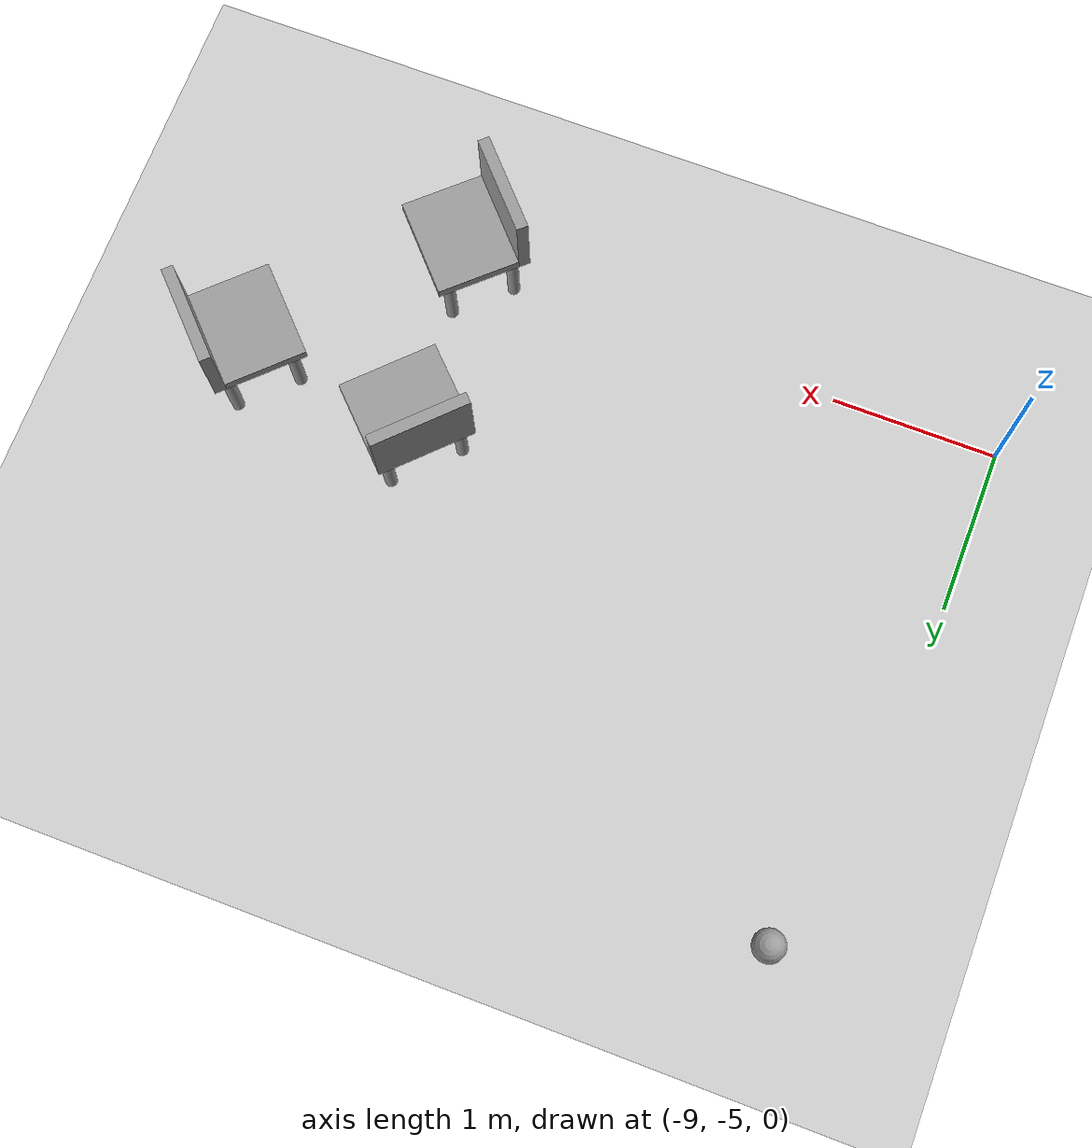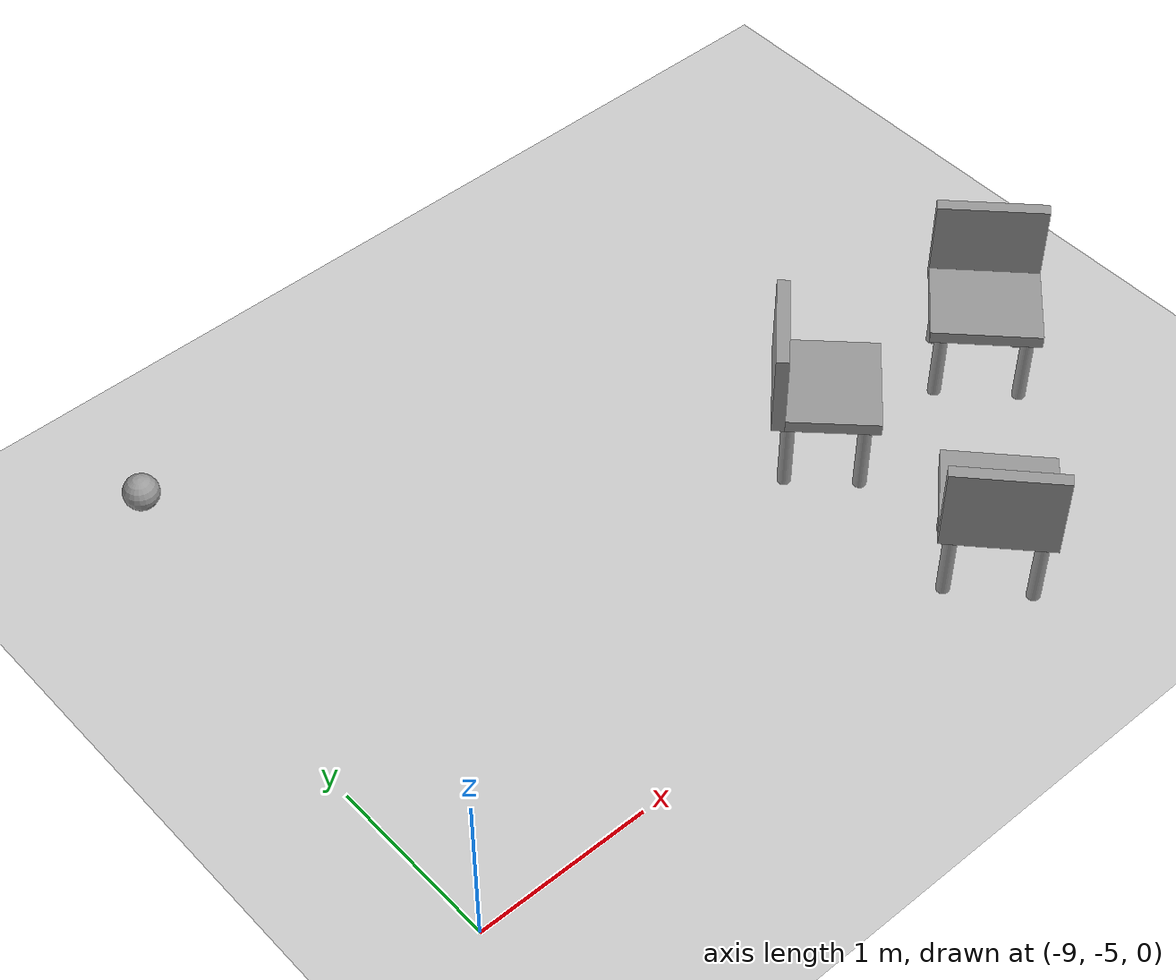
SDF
<sdf version="1.6">
 <world name="default">
  <model name="ground_plane">
   <static>1</static>
   <link name="link">
    <collision name="collision">
     <geometry><plane><normal>0 0 1</normal><size>100 100</size></plane></geometry>
     <surface>
      <contact><collide_bitmask>65535</collide_bitmask></contact>
      <friction><ode><mu>100</mu><mu2>50</mu2></ode></friction>
     </surface>
    </collision>
    <visual name="visual">
     <cast_shadows>0</cast_shadows>
     <geometry><plane><normal>0 0 1</normal><size>100 100</size></plane></geometry>
     <material>
      <script><uri>file://media/materials/scripts/gazebo.material</uri><name>Gazebo/Grey</name></script>
     </material>
    </visual>
   </link>
  </model>
  <model name="chair_0">
   <link name="link_0">
    <inertial>
     <mass>1</mass>
     <inertia>
      <ixx>0.166667</ixx>
      <ixy>0</ixy>
      <ixz>0</ixz>
      <iyy>0.166667</iyy>
      <iyz>0</iyz>
      <izz>0.166667</izz>
     </inertia>
    </inertial>
    <pose>-0.067504 0 0.137499 0 -0 0</pose>
    <visual name="visual">
     <geometry><box><size>0.5 0.6 0.07</size></box></geometry>
     <material>
      <lighting>1</lighting>
      <script><uri>file://media/materials/scripts/gazebo.material</uri><name>Gazebo/Grey</name></script>
      <shader type="pixel"><normal_map>__default__</normal_map></shader>
      <ambient>0.3 0.3 0.3 1</ambient>
      <diffuse>0.7 0.7 0.7 1</diffuse>
      <specular>0.01 0.01 0.01 1</specular>
      <emissive>0 0 0 1</emissive>
     </material>
    </visual>
    <collision name="collision">
     <geometry><box><size>0.5 0.6 0.07</size></box></geometry>
     <surface>
      <friction>
       <ode><mu>1</mu><mu2>1</mu2><fdir1>0 0 0</fdir1><slip1>0</slip1><slip2>0</slip2></ode>
       <torsional>
        <coefficient>1</coefficient>
        <patch_radius>0</patch_radius>
        <surface_radius>0</surface_radius>
        <use_patch_radius>1</use_patch_radius>
        <ode><slip>0</slip></ode>
       </torsional>
      </friction>
      <bounce><restitution_coefficient>0</restitution_coefficient><threshold>1e+06</threshold></bounce>
      <contact>
       <collide_without_contact>0</collide_without_contact>
       <collide_without_contact_bitmask>1</collide_without_contact_bitmask>
       <collide_bitmask>1</collide_bitmask>
       <ode>
        <soft_cfm>0</soft_cfm>
        <soft_erp>0.2</soft_erp>
        <kp>1e+13</kp>
        <kd>1</kd>
        <max_vel>0.01</max_vel>
        <min_depth>0</min_depth>
       </ode>
       <bullet>
        <split_impulse>1</split_impulse>
        <split_impulse_penetration_threshold>-0.01</split_impulse_penetration_threshold>
        <soft_cfm>0</soft_cfm>
        <soft_erp>0.2</soft_erp>
        <kp>1e+13</kp>
        <kd>1</kd>
       </bullet>
      </contact>
     </surface>
    </collision>
   </link>
   <link name="link_0_clone">
    <inertial>
     <mass>1</mass>
     <inertia>
      <ixx>0.166667</ixx>
      <ixy>0</ixy>
      <ixz>0</ixz>
      <iyy>0.166667</iyy>
      <iyz>0</iyz>
      <izz>0.166667</izz>
     </inertia>
    </inertial>
    <pose>0.21752 0 0.352503 0 1.5707 0</pose>
    <visual name="visual">
     <geometry><box><size>0.5 0.6 0.07</size></box></geometry>
     <material>
      <lighting>1</lighting>
      <script><uri>file://media/materials/scripts/gazebo.material</uri><name>Gazebo/Grey</name></script>
      <shader type="pixel"><normal_map>__default__</normal_map></shader>
      <ambient>0.3 0.3 0.3 1</ambient>
      <diffuse>0.7 0.7 0.7 1</diffuse>
      <specular>0.01 0.01 0.01 1</specular>
      <emissive>0 0 0 1</emissive>
     </material>
    </visual>
    <collision name="collision">
     <geometry><box><size>0.5 0.6 0.07</size></box></geometry>
     <surface>
      <friction>
       <ode><mu>1</mu><mu2>1</mu2><fdir1>0 0 0</fdir1><slip1>0</slip1><slip2>0</slip2></ode>
       <torsional>
        <coefficient>1</coefficient>
        <patch_radius>0</patch_radius>
        <surface_radius>0</surface_radius>
        <use_patch_radius>1</use_patch_radius>
        <ode><slip>0</slip></ode>
       </torsional>
      </friction>
      <bounce><restitution_coefficient>0</restitution_coefficient><threshold>1e+06</threshold></bounce>
      <contact>
       <collide_without_contact>0</collide_without_contact>
       <collide_without_contact_bitmask>1</collide_without_contact_bitmask>
       <collide_bitmask>1</collide_bitmask>
       <ode>
        <soft_cfm>0</soft_cfm>
        <soft_erp>0.2</soft_erp>
        <kp>1e+13</kp>
        <kd>1</kd>
        <max_vel>0.01</max_vel>
        <min_depth>0</min_depth>
       </ode>
       <bullet>
        <split_impulse>1</split_impulse>
        <split_impulse_penetration_threshold>-0.01</split_impulse_penetration_threshold>
        <soft_cfm>0</soft_cfm>
        <soft_erp>0.2</soft_erp>
        <kp>1e+13</kp>
        <kd>1</kd>
       </bullet>
      </contact>
     </surface>
    </collision>
   </link>
   <link name="link_1">
    <inertial>
     <mass>1</mass>
     <inertia><ixx>0.145833</ixx><ixy>0</ixy><ixz>0</ixz><iyy>0.145833</iyy><iyz>0</iyz><izz>0.125</izz></inertia>
    </inertial>
    <pose>-0.237504 -0.23 -0.122501 0 -0 0</pose>
    <visual name="visual">
     <geometry><cylinder><radius>0.037</radius><length>0.45</length></cylinder></geometry>
     <material>
      <lighting>1</lighting>
      <script><uri>file://media/materials/scripts/gazebo.material</uri><name>Gazebo/Grey</name></script>
      <shader type="pixel"><normal_map>__default__</normal_map></shader>
      <ambient>0.3 0.3 0.3 1</ambient>
      <diffuse>0.7 0.7 0.7 1</diffuse>
      <specular>0.01 0.01 0.01 1</specular>
      <emissive>0 0 0 1</emissive>
     </material>
    </visual>
    <collision name="collision">
     <geometry><cylinder><radius>0.037</radius><length>0.45</length></cylinder></geometry>
     <surface>
      <friction>
       <ode><mu>1</mu><mu2>1</mu2><fdir1>0 0 0</fdir1><slip1>0</slip1><slip2>0</slip2></ode>
       <torsional>
        <coefficient>1</coefficient>
        <patch_radius>0</patch_radius>
        <surface_radius>0</surface_radius>
        <use_patch_radius>1</use_patch_radius>
        <ode><slip>0</slip></ode>
       </torsional>
      </friction>
      <bounce><restitution_coefficient>0</restitution_coefficient><threshold>1e+06</threshold></bounce>
      <contact>
       <collide_without_contact>0</collide_without_contact>
       <collide_without_contact_bitmask>1</collide_without_contact_bitmask>
       <collide_bitmask>1</collide_bitmask>
       <ode>
        <soft_cfm>0</soft_cfm>
        <soft_erp>0.2</soft_erp>
        <kp>1e+13</kp>
        <kd>1</kd>
        <max_vel>0.01</max_vel>
        <min_depth>0</min_depth>
       </ode>
       <bullet>
        <split_impulse>1</split_impulse>
        <split_impulse_penetration_threshold>-0.01</split_impulse_penetration_threshold>
        <soft_cfm>0</soft_cfm>
        <soft_erp>0.2</soft_erp>
        <kp>1e+13</kp>
        <kd>1</kd>
       </bullet>
      </contact>
     </surface>
    </collision>
   </link>
   <link name="link_1_clone">
    <inertial>
     <mass>1</mass>
     <inertia><ixx>0.145833</ixx><ixy>0</ixy><ixz>0</ixz><iyy>0.145833</iyy><iyz>0</iyz><izz>0.125</izz></inertia>
    </inertial>
    <pose>-0.237504 0.23 -0.122501 0 -0 0</pose>
    <visual name="visual">
     <geometry><cylinder><radius>0.037</radius><length>0.45</length></cylinder></geometry>
     <material>
      <lighting>1</lighting>
      <script><uri>file://media/materials/scripts/gazebo.material</uri><name>Gazebo/Grey</name></script>
      <shader type="pixel"><normal_map>__default__</normal_map></shader>
      <ambient>0.3 0.3 0.3 1</ambient>
      <diffuse>0.7 0.7 0.7 1</diffuse>
      <specular>0.01 0.01 0.01 1</specular>
      <emissive>0 0 0 1</emissive>
     </material>
    </visual>
    <collision name="collision">
     <geometry><cylinder><radius>0.037</radius><length>0.45</length></cylinder></geometry>
     <surface>
      <friction>
       <ode><mu>1</mu><mu2>1</mu2><fdir1>0 0 0</fdir1><slip1>0</slip1><slip2>0</slip2></ode>
       <torsional>
        <coefficient>1</coefficient>
        <patch_radius>0</patch_radius>
        <surface_radius>0</surface_radius>
        <use_patch_radius>1</use_patch_radius>
        <ode><slip>0</slip></ode>
       </torsional>
      </friction>
      <bounce><restitution_coefficient>0</restitution_coefficient><threshold>1e+06</threshold></bounce>
      <contact>
       <collide_without_contact>0</collide_without_contact>
       <collide_without_contact_bitmask>1</collide_without_contact_bitmask>
       <collide_bitmask>1</collide_bitmask>
       <ode>
        <soft_cfm>0</soft_cfm>
        <soft_erp>0.2</soft_erp>
        <kp>1e+13</kp>
        <kd>1</kd>
        <max_vel>0.01</max_vel>
        <min_depth>0</min_depth>
       </ode>
       <bullet>
        <split_impulse>1</split_impulse>
        <split_impulse_penetration_threshold>-0.01</split_impulse_penetration_threshold>
        <soft_cfm>0</soft_cfm>
        <soft_erp>0.2</soft_erp>
        <kp>1e+13</kp>
        <kd>1</kd>
       </bullet>
      </contact>
     </surface>
    </collision>
   </link>
   <link name="link_1_clone_0">
    <inertial>
     <mass>1</mass>
     <inertia><ixx>0.145833</ixx><ixy>0</ixy><ixz>0</ixz><iyy>0.145833</iyy><iyz>0</iyz><izz>0.125</izz></inertia>
    </inertial>
    <pose>0.162496 0.23 -0.122501 0 -0 0</pose>
    <visual name="visual">
     <geometry><cylinder><radius>0.037</radius><length>0.45</length></cylinder></geometry>
     <material>
      <lighting>1</lighting>
      <script><uri>file://media/materials/scripts/gazebo.material</uri><name>Gazebo/Grey</name></script>
      <shader type="pixel"><normal_map>__default__</normal_map></shader>
      <ambient>0.3 0.3 0.3 1</ambient>
      <diffuse>0.7 0.7 0.7 1</diffuse>
      <specular>0.01 0.01 0.01 1</specular>
      <emissive>0 0 0 1</emissive>
     </material>
    </visual>
    <collision name="collision">
     <geometry><cylinder><radius>0.037</radius><length>0.45</length></cylinder></geometry>
     <surface>
      <friction>
       <ode><mu>1</mu><mu2>1</mu2><fdir1>0 0 0</fdir1><slip1>0</slip1><slip2>0</slip2></ode>
       <torsional>
        <coefficient>1</coefficient>
        <patch_radius>0</patch_radius>
        <surface_radius>0</surface_radius>
        <use_patch_radius>1</use_patch_radius>
        <ode><slip>0</slip></ode>
       </torsional>
      </friction>
      <bounce><restitution_coefficient>0</restitution_coefficient><threshold>1e+06</threshold></bounce>
      <contact>
       <collide_without_contact>0</collide_without_contact>
       <collide_without_contact_bitmask>1</collide_without_contact_bitmask>
       <collide_bitmask>1</collide_bitmask>
       <ode>
        <soft_cfm>0</soft_cfm>
        <soft_erp>0.2</soft_erp>
        <kp>1e+13</kp>
        <kd>1</kd>
        <max_vel>0.01</max_vel>
        <min_depth>0</min_depth>
       </ode>
       <bullet>
        <split_impulse>1</split_impulse>
        <split_impulse_penetration_threshold>-0.01</split_impulse_penetration_threshold>
        <soft_cfm>0</soft_cfm>
        <soft_erp>0.2</soft_erp>
        <kp>1e+13</kp>
        <kd>1</kd>
       </bullet>
      </contact>
     </surface>
    </collision>
   </link>
   <link name="link_1_clone_1">
    <inertial>
     <mass>1</mass>
     <inertia><ixx>0.145833</ixx><ixy>0</ixy><ixz>0</ixz><iyy>0.145833</iyy><iyz>0</iyz><izz>0.125</izz></inertia>
    </inertial>
    <pose>0.162496 -0.23 -0.122501 0 -0 0</pose>
    <visual name="visual">
     <geometry><cylinder><radius>0.037</radius><length>0.45</length></cylinder></geometry>
     <material>
      <lighting>1</lighting>
      <script><uri>file://media/materials/scripts/gazebo.material</uri><name>Gazebo/Grey</name></script>
      <shader type="pixel"><normal_map>__default__</normal_map></shader>
      <ambient>0.3 0.3 0.3 1</ambient>
      <diffuse>0.7 0.7 0.7 1</diffuse>
      <specular>0.01 0.01 0.01 1</specular>
      <emissive>0 0 0 1</emissive>
     </material>
    </visual>
    <collision name="collision">
     <geometry><cylinder><radius>0.037</radius><length>0.45</length></cylinder></geometry>
     <surface>
      <friction>
       <ode><mu>1</mu><mu2>1</mu2><fdir1>0 0 0</fdir1><slip1>0</slip1><slip2>0</slip2></ode>
       <torsional>
        <coefficient>1</coefficient>
        <patch_radius>0</patch_radius>
        <surface_radius>0</surface_radius>
        <use_patch_radius>1</use_patch_radius>
        <ode><slip>0</slip></ode>
       </torsional>
      </friction>
      <bounce><restitution_coefficient>0</restitution_coefficient><threshold>1e+06</threshold></bounce>
      <contact>
       <collide_without_contact>0</collide_without_contact>
       <collide_without_contact_bitmask>1</collide_without_contact_bitmask>
       <collide_bitmask>1</collide_bitmask>
       <ode>
        <soft_cfm>0</soft_cfm>
        <soft_erp>0.2</soft_erp>
        <kp>1e+13</kp>
        <kd>1</kd>
        <max_vel>0.01</max_vel>
        <min_depth>0</min_depth>
       </ode>
       <bullet>
        <split_impulse>1</split_impulse>
        <split_impulse_penetration_threshold>-0.01</split_impulse_penetration_threshold>
        <soft_cfm>0</soft_cfm>
        <soft_erp>0.2</soft_erp>
        <kp>1e+13</kp>
        <kd>1</kd>
       </bullet>
      </contact>
     </surface>
    </collision>
   </link>
   <joint name="link_0_JOINT_0" type="fixed">
    <parent>link_0</parent>
    <child>link_0_clone</child>
    <physics>
     <ode><limit><cfm>0</cfm><erp>0.2</erp></limit><suspension><cfm>0</cfm><erp>0.2</erp></suspension></ode>
    </physics>
   </joint>
   <joint name="link_0_JOINT_1" type="fixed">
    <parent>link_0</parent>
    <child>link_1</child>
    <physics>
     <ode><limit><cfm>0</cfm><erp>0.2</erp></limit><suspension><cfm>0</cfm><erp>0.2</erp></suspension></ode>
    </physics>
   </joint>
   <joint name="link_0_JOINT_2" type="fixed">
    <parent>link_0</parent>
    <child>link_1_clone_0</child>
    <physics>
     <ode><limit><cfm>0</cfm><erp>0.2</erp></limit><suspension><cfm>0</cfm><erp>0.2</erp></suspension></ode>
    </physics>
   </joint>
   <joint name="link_0_JOINT_3" type="fixed">
    <parent>link_0</parent>
    <child>link_1_clone</child>
    <physics>
     <ode><limit><cfm>0</cfm><erp>0.2</erp></limit><suspension><cfm>0</cfm><erp>0.2</erp></suspension></ode>
    </physics>
   </joint>
   <joint name="link_0_JOINT_4" type="fixed">
    <parent>link_0</parent>
    <child>link_1_clone_1</child>
    <physics>
     <ode><limit><cfm>0</cfm><erp>0.2</erp></limit><suspension><cfm>0</cfm><erp>0.2</erp></suspension></ode>
    </physics>
   </joint>
   <static>0</static>
   <pose>-5.75013 -3.88388 0.347501 0 -0 2.36063</pose>
  </model>
  <model name="chair_1">
   <link name="link_0">
    <inertial>
     <mass>1</mass>
     <inertia>
      <ixx>0.166667</ixx>
      <ixy>0</ixy>
      <ixz>0</ixz>
      <iyy>0.166667</iyy>
      <iyz>0</iyz>
      <izz>0.166667</izz>
     </inertia>
    </inertial>
    <pose>-0.067504 0 0.137499 0 -0 0</pose>
    <visual name="visual">
     <geometry><box><size>0.5 0.6 0.07</size></box></geometry>
     <material>
      <lighting>1</lighting>
      <script><uri>file://media/materials/scripts/gazebo.material</uri><name>Gazebo/Grey</name></script>
      <shader type="pixel"><normal_map>__default__</normal_map></shader>
      <ambient>0.3 0.3 0.3 1</ambient>
      <diffuse>0.7 0.7 0.7 1</diffuse>
      <specular>0.01 0.01 0.01 1</specular>
      <emissive>0 0 0 1</emissive>
     </material>
    </visual>
    <collision name="collision">
     <geometry><box><size>0.5 0.6 0.07</size></box></geometry>
     <surface>
      <friction>
       <ode><mu>1</mu><mu2>1</mu2><fdir1>0 0 0</fdir1><slip1>0</slip1><slip2>0</slip2></ode>
       <torsional>
        <coefficient>1</coefficient>
        <patch_radius>0</patch_radius>
        <surface_radius>0</surface_radius>
        <use_patch_radius>1</use_patch_radius>
        <ode><slip>0</slip></ode>
       </torsional>
      </friction>
      <bounce><restitution_coefficient>0</restitution_coefficient><threshold>1e+06</threshold></bounce>
      <contact>
       <collide_without_contact>0</collide_without_contact>
       <collide_without_contact_bitmask>1</collide_without_contact_bitmask>
       <collide_bitmask>1</collide_bitmask>
       <ode>
        <soft_cfm>0</soft_cfm>
        <soft_erp>0.2</soft_erp>
        <kp>1e+13</kp>
        <kd>1</kd>
        <max_vel>0.01</max_vel>
        <min_depth>0</min_depth>
       </ode>
       <bullet>
        <split_impulse>1</split_impulse>
        <split_impulse_penetration_threshold>-0.01</split_impulse_penetration_threshold>
        <soft_cfm>0</soft_cfm>
        <soft_erp>0.2</soft_erp>
        <kp>1e+13</kp>
        <kd>1</kd>
       </bullet>
      </contact>
     </surface>
    </collision>
   </link>
   <link name="link_0_clone">
    <inertial>
     <mass>1</mass>
     <inertia>
      <ixx>0.166667</ixx>
      <ixy>0</ixy>
      <ixz>0</ixz>
      <iyy>0.166667</iyy>
      <iyz>0</iyz>
      <izz>0.166667</izz>
     </inertia>
    </inertial>
    <pose>0.21752 0 0.352503 0 1.5707 0</pose>
    <visual name="visual">
     <geometry><box><size>0.5 0.6 0.07</size></box></geometry>
     <material>
      <lighting>1</lighting>
      <script><uri>file://media/materials/scripts/gazebo.material</uri><name>Gazebo/Grey</name></script>
      <shader type="pixel"><normal_map>__default__</normal_map></shader>
      <ambient>0.3 0.3 0.3 1</ambient>
      <diffuse>0.7 0.7 0.7 1</diffuse>
      <specular>0.01 0.01 0.01 1</specular>
      <emissive>0 0 0 1</emissive>
     </material>
    </visual>
    <collision name="collision">
     <geometry><box><size>0.5 0.6 0.07</size></box></geometry>
     <surface>
      <friction>
       <ode><mu>1</mu><mu2>1</mu2><fdir1>0 0 0</fdir1><slip1>0</slip1><slip2>0</slip2></ode>
       <torsional>
        <coefficient>1</coefficient>
        <patch_radius>0</patch_radius>
        <surface_radius>0</surface_radius>
        <use_patch_radius>1</use_patch_radius>
        <ode><slip>0</slip></ode>
       </torsional>
      </friction>
      <bounce><restitution_coefficient>0</restitution_coefficient><threshold>1e+06</threshold></bounce>
      <contact>
       <collide_without_contact>0</collide_without_contact>
       <collide_without_contact_bitmask>1</collide_without_contact_bitmask>
       <collide_bitmask>1</collide_bitmask>
       <ode>
        <soft_cfm>0</soft_cfm>
        <soft_erp>0.2</soft_erp>
        <kp>1e+13</kp>
        <kd>1</kd>
        <max_vel>0.01</max_vel>
        <min_depth>0</min_depth>
       </ode>
       <bullet>
        <split_impulse>1</split_impulse>
        <split_impulse_penetration_threshold>-0.01</split_impulse_penetration_threshold>
        <soft_cfm>0</soft_cfm>
        <soft_erp>0.2</soft_erp>
        <kp>1e+13</kp>
        <kd>1</kd>
       </bullet>
      </contact>
     </surface>
    </collision>
   </link>
   <link name="link_1">
    <inertial>
     <mass>1</mass>
     <inertia><ixx>0.145833</ixx><ixy>0</ixy><ixz>0</ixz><iyy>0.145833</iyy><iyz>0</iyz><izz>0.125</izz></inertia>
    </inertial>
    <pose>-0.237504 -0.23 -0.122501 0 -0 0</pose>
    <visual name="visual">
     <geometry><cylinder><radius>0.037</radius><length>0.45</length></cylinder></geometry>
     <material>
      <lighting>1</lighting>
      <script><uri>file://media/materials/scripts/gazebo.material</uri><name>Gazebo/Grey</name></script>
      <shader type="pixel"><normal_map>__default__</normal_map></shader>
      <ambient>0.3 0.3 0.3 1</ambient>
      <diffuse>0.7 0.7 0.7 1</diffuse>
      <specular>0.01 0.01 0.01 1</specular>
      <emissive>0 0 0 1</emissive>
     </material>
    </visual>
    <collision name="collision">
     <geometry><cylinder><radius>0.037</radius><length>0.45</length></cylinder></geometry>
     <surface>
      <friction>
       <ode><mu>1</mu><mu2>1</mu2><fdir1>0 0 0</fdir1><slip1>0</slip1><slip2>0</slip2></ode>
       <torsional>
        <coefficient>1</coefficient>
        <patch_radius>0</patch_radius>
        <surface_radius>0</surface_radius>
        <use_patch_radius>1</use_patch_radius>
        <ode><slip>0</slip></ode>
       </torsional>
      </friction>
      <bounce><restitution_coefficient>0</restitution_coefficient><threshold>1e+06</threshold></bounce>
      <contact>
       <collide_without_contact>0</collide_without_contact>
       <collide_without_contact_bitmask>1</collide_without_contact_bitmask>
       <collide_bitmask>1</collide_bitmask>
       <ode>
        <soft_cfm>0</soft_cfm>
        <soft_erp>0.2</soft_erp>
        <kp>1e+13</kp>
        <kd>1</kd>
        <max_vel>0.01</max_vel>
        <min_depth>0</min_depth>
       </ode>
       <bullet>
        <split_impulse>1</split_impulse>
        <split_impulse_penetration_threshold>-0.01</split_impulse_penetration_threshold>
        <soft_cfm>0</soft_cfm>
        <soft_erp>0.2</soft_erp>
        <kp>1e+13</kp>
        <kd>1</kd>
       </bullet>
      </contact>
     </surface>
    </collision>
   </link>
   <link name="link_1_clone">
    <inertial>
     <mass>1</mass>
     <inertia><ixx>0.145833</ixx><ixy>0</ixy><ixz>0</ixz><iyy>0.145833</iyy><iyz>0</iyz><izz>0.125</izz></inertia>
    </inertial>
    <pose>-0.237504 0.23 -0.122501 0 -0 0</pose>
    <visual name="visual">
     <geometry><cylinder><radius>0.037</radius><length>0.45</length></cylinder></geometry>
     <material>
      <lighting>1</lighting>
      <script><uri>file://media/materials/scripts/gazebo.material</uri><name>Gazebo/Grey</name></script>
      <shader type="pixel"><normal_map>__default__</normal_map></shader>
      <ambient>0.3 0.3 0.3 1</ambient>
      <diffuse>0.7 0.7 0.7 1</diffuse>
      <specular>0.01 0.01 0.01 1</specular>
      <emissive>0 0 0 1</emissive>
     </material>
    </visual>
    <collision name="collision">
     <geometry><cylinder><radius>0.037</radius><length>0.45</length></cylinder></geometry>
     <surface>
      <friction>
       <ode><mu>1</mu><mu2>1</mu2><fdir1>0 0 0</fdir1><slip1>0</slip1><slip2>0</slip2></ode>
       <torsional>
        <coefficient>1</coefficient>
        <patch_radius>0</patch_radius>
        <surface_radius>0</surface_radius>
        <use_patch_radius>1</use_patch_radius>
        <ode><slip>0</slip></ode>
       </torsional>
      </friction>
      <bounce><restitution_coefficient>0</restitution_coefficient><threshold>1e+06</threshold></bounce>
      <contact>
       <collide_without_contact>0</collide_without_contact>
       <collide_without_contact_bitmask>1</collide_without_contact_bitmask>
       <collide_bitmask>1</collide_bitmask>
       <ode>
        <soft_cfm>0</soft_cfm>
        <soft_erp>0.2</soft_erp>
        <kp>1e+13</kp>
        <kd>1</kd>
        <max_vel>0.01</max_vel>
        <min_depth>0</min_depth>
       </ode>
       <bullet>
        <split_impulse>1</split_impulse>
        <split_impulse_penetration_threshold>-0.01</split_impulse_penetration_threshold>
        <soft_cfm>0</soft_cfm>
        <soft_erp>0.2</soft_erp>
        <kp>1e+13</kp>
        <kd>1</kd>
       </bullet>
      </contact>
     </surface>
    </collision>
   </link>
   <link name="link_1_clone_0">
    <inertial>
     <mass>1</mass>
     <inertia><ixx>0.145833</ixx><ixy>0</ixy><ixz>0</ixz><iyy>0.145833</iyy><iyz>0</iyz><izz>0.125</izz></inertia>
    </inertial>
    <pose>0.162496 0.23 -0.122501 0 -0 0</pose>
    <visual name="visual">
     <geometry><cylinder><radius>0.037</radius><length>0.45</length></cylinder></geometry>
     <material>
      <lighting>1</lighting>
      <script><uri>file://media/materials/scripts/gazebo.material</uri><name>Gazebo/Grey</name></script>
      <shader type="pixel"><normal_map>__default__</normal_map></shader>
      <ambient>0.3 0.3 0.3 1</ambient>
      <diffuse>0.7 0.7 0.7 1</diffuse>
      <specular>0.01 0.01 0.01 1</specular>
      <emissive>0 0 0 1</emissive>
     </material>
    </visual>
    <collision name="collision">
     <geometry><cylinder><radius>0.037</radius><length>0.45</length></cylinder></geometry>
     <surface>
      <friction>
       <ode><mu>1</mu><mu2>1</mu2><fdir1>0 0 0</fdir1><slip1>0</slip1><slip2>0</slip2></ode>
       <torsional>
        <coefficient>1</coefficient>
        <patch_radius>0</patch_radius>
        <surface_radius>0</surface_radius>
        <use_patch_radius>1</use_patch_radius>
        <ode><slip>0</slip></ode>
       </torsional>
      </friction>
      <bounce><restitution_coefficient>0</restitution_coefficient><threshold>1e+06</threshold></bounce>
      <contact>
       <collide_without_contact>0</collide_without_contact>
       <collide_without_contact_bitmask>1</collide_without_contact_bitmask>
       <collide_bitmask>1</collide_bitmask>
       <ode>
        <soft_cfm>0</soft_cfm>
        <soft_erp>0.2</soft_erp>
        <kp>1e+13</kp>
        <kd>1</kd>
        <max_vel>0.01</max_vel>
        <min_depth>0</min_depth>
       </ode>
       <bullet>
        <split_impulse>1</split_impulse>
        <split_impulse_penetration_threshold>-0.01</split_impulse_penetration_threshold>
        <soft_cfm>0</soft_cfm>
        <soft_erp>0.2</soft_erp>
        <kp>1e+13</kp>
        <kd>1</kd>
       </bullet>
      </contact>
     </surface>
    </collision>
   </link>
   <link name="link_1_clone_1">
    <inertial>
     <mass>1</mass>
     <inertia><ixx>0.145833</ixx><ixy>0</ixy><ixz>0</ixz><iyy>0.145833</iyy><iyz>0</iyz><izz>0.125</izz></inertia>
    </inertial>
    <pose>0.162496 -0.23 -0.122501 0 -0 0</pose>
    <visual name="visual">
     <geometry><cylinder><radius>0.037</radius><length>0.45</length></cylinder></geometry>
     <material>
      <lighting>1</lighting>
      <script><uri>file://media/materials/scripts/gazebo.material</uri><name>Gazebo/Grey</name></script>
      <shader type="pixel"><normal_map>__default__</normal_map></shader>
      <ambient>0.3 0.3 0.3 1</ambient>
      <diffuse>0.7 0.7 0.7 1</diffuse>
      <specular>0.01 0.01 0.01 1</specular>
      <emissive>0 0 0 1</emissive>
     </material>
    </visual>
    <collision name="collision">
     <geometry><cylinder><radius>0.037</radius><length>0.45</length></cylinder></geometry>
     <surface>
      <friction>
       <ode><mu>1</mu><mu2>1</mu2><fdir1>0 0 0</fdir1><slip1>0</slip1><slip2>0</slip2></ode>
       <torsional>
        <coefficient>1</coefficient>
        <patch_radius>0</patch_radius>
        <surface_radius>0</surface_radius>
        <use_patch_radius>1</use_patch_radius>
        <ode><slip>0</slip></ode>
       </torsional>
      </friction>
      <bounce><restitution_coefficient>0</restitution_coefficient><threshold>1e+06</threshold></bounce>
      <contact>
       <collide_without_contact>0</collide_without_contact>
       <collide_without_contact_bitmask>1</collide_without_contact_bitmask>
       <collide_bitmask>1</collide_bitmask>
       <ode>
        <soft_cfm>0</soft_cfm>
        <soft_erp>0.2</soft_erp>
        <kp>1e+13</kp>
        <kd>1</kd>
        <max_vel>0.01</max_vel>
        <min_depth>0</min_depth>
       </ode>
       <bullet>
        <split_impulse>1</split_impulse>
        <split_impulse_penetration_threshold>-0.01</split_impulse_penetration_threshold>
        <soft_cfm>0</soft_cfm>
        <soft_erp>0.2</soft_erp>
        <kp>1e+13</kp>
        <kd>1</kd>
       </bullet>
      </contact>
     </surface>
    </collision>
   </link>
   <joint name="link_0_JOINT_0" type="fixed">
    <parent>link_0</parent>
    <child>link_0_clone</child>
    <physics>
     <ode><limit><cfm>0</cfm><erp>0.2</erp></limit><suspension><cfm>0</cfm><erp>0.2</erp></suspension></ode>
    </physics>
   </joint>
   <joint name="link_0_JOINT_1" type="fixed">
    <parent>link_0</parent>
    <child>link_1</child>
    <physics>
     <ode><limit><cfm>0</cfm><erp>0.2</erp></limit><suspension><cfm>0</cfm><erp>0.2</erp></suspension></ode>
    </physics>
   </joint>
   <joint name="link_0_JOINT_2" type="fixed">
    <parent>link_0</parent>
    <child>link_1_clone_0</child>
    <physics>
     <ode><limit><cfm>0</cfm><erp>0.2</erp></limit><suspension><cfm>0</cfm><erp>0.2</erp></suspension></ode>
    </physics>
   </joint>
   <joint name="link_0_JOINT_3" type="fixed">
    <parent>link_0</parent>
    <child>link_1_clone</child>
    <physics>
     <ode><limit><cfm>0</cfm><erp>0.2</erp></limit><suspension><cfm>0</cfm><erp>0.2</erp></suspension></ode>
    </physics>
   </joint>
   <joint name="link_0_JOINT_4" type="fixed">
    <parent>link_0</parent>
    <child>link_1_clone_1</child>
    <physics>
     <ode><limit><cfm>0</cfm><erp>0.2</erp></limit><suspension><cfm>0</cfm><erp>0.2</erp></suspension></ode>
    </physics>
   </joint>
   <static>0</static>
   <pose>-4.62364 -4.00925 0.347501 0 -0 0.77284</pose>
  </model>
  <model name="chair_2">
   <link name="link_0">
    <inertial>
     <mass>1</mass>
     <inertia>
      <ixx>0.166667</ixx>
      <ixy>0</ixy>
      <ixz>0</ixz>
      <iyy>0.166667</iyy>
      <iyz>0</iyz>
      <izz>0.166667</izz>
     </inertia>
    </inertial>
    <pose>-0.067504 0 0.137499 0 -0 0</pose>
    <visual name="visual">
     <geometry><box><size>0.5 0.6 0.07</size></box></geometry>
     <material>
      <lighting>1</lighting>
      <script><uri>file://media/materials/scripts/gazebo.material</uri><name>Gazebo/Grey</name></script>
      <shader type="pixel"><normal_map>__default__</normal_map></shader>
      <ambient>0.3 0.3 0.3 1</ambient>
      <diffuse>0.7 0.7 0.7 1</diffuse>
      <specular>0.01 0.01 0.01 1</specular>
      <emissive>0 0 0 1</emissive>
     </material>
    </visual>
    <collision name="collision">
     <geometry><box><size>0.5 0.6 0.07</size></box></geometry>
     <surface>
      <friction>
       <ode><mu>1</mu><mu2>1</mu2><fdir1>0 0 0</fdir1><slip1>0</slip1><slip2>0</slip2></ode>
       <torsional>
        <coefficient>1</coefficient>
        <patch_radius>0</patch_radius>
        <surface_radius>0</surface_radius>
        <use_patch_radius>1</use_patch_radius>
        <ode><slip>0</slip></ode>
       </torsional>
      </friction>
      <bounce><restitution_coefficient>0</restitution_coefficient><threshold>1e+06</threshold></bounce>
      <contact>
       <collide_without_contact>0</collide_without_contact>
       <collide_without_contact_bitmask>1</collide_without_contact_bitmask>
       <collide_bitmask>1</collide_bitmask>
       <ode>
        <soft_cfm>0</soft_cfm>
        <soft_erp>0.2</soft_erp>
        <kp>1e+13</kp>
        <kd>1</kd>
        <max_vel>0.01</max_vel>
        <min_depth>0</min_depth>
       </ode>
       <bullet>
        <split_impulse>1</split_impulse>
        <split_impulse_penetration_threshold>-0.01</split_impulse_penetration_threshold>
        <soft_cfm>0</soft_cfm>
        <soft_erp>0.2</soft_erp>
        <kp>1e+13</kp>
        <kd>1</kd>
       </bullet>
      </contact>
     </surface>
    </collision>
   </link>
   <link name="link_0_clone">
    <inertial>
     <mass>1</mass>
     <inertia>
      <ixx>0.166667</ixx>
      <ixy>0</ixy>
      <ixz>0</ixz>
      <iyy>0.166667</iyy>
      <iyz>0</iyz>
      <izz>0.166667</izz>
     </inertia>
    </inertial>
    <pose>0.21752 0 0.352503 0 1.5707 0</pose>
    <visual name="visual">
     <geometry><box><size>0.5 0.6 0.07</size></box></geometry>
     <material>
      <lighting>1</lighting>
      <script><uri>file://media/materials/scripts/gazebo.material</uri><name>Gazebo/Grey</name></script>
      <shader type="pixel"><normal_map>__default__</normal_map></shader>
      <ambient>0.3 0.3 0.3 1</ambient>
      <diffuse>0.7 0.7 0.7 1</diffuse>
      <specular>0.01 0.01 0.01 1</specular>
      <emissive>0 0 0 1</emissive>
     </material>
    </visual>
    <collision name="collision">
     <geometry><box><size>0.5 0.6 0.07</size></box></geometry>
     <surface>
      <friction>
       <ode><mu>1</mu><mu2>1</mu2><fdir1>0 0 0</fdir1><slip1>0</slip1><slip2>0</slip2></ode>
       <torsional>
        <coefficient>1</coefficient>
        <patch_radius>0</patch_radius>
        <surface_radius>0</surface_radius>
        <use_patch_radius>1</use_patch_radius>
        <ode><slip>0</slip></ode>
       </torsional>
      </friction>
      <bounce><restitution_coefficient>0</restitution_coefficient><threshold>1e+06</threshold></bounce>
      <contact>
       <collide_without_contact>0</collide_without_contact>
       <collide_without_contact_bitmask>1</collide_without_contact_bitmask>
       <collide_bitmask>1</collide_bitmask>
       <ode>
        <soft_cfm>0</soft_cfm>
        <soft_erp>0.2</soft_erp>
        <kp>1e+13</kp>
        <kd>1</kd>
        <max_vel>0.01</max_vel>
        <min_depth>0</min_depth>
       </ode>
       <bullet>
        <split_impulse>1</split_impulse>
        <split_impulse_penetration_threshold>-0.01</split_impulse_penetration_threshold>
        <soft_cfm>0</soft_cfm>
        <soft_erp>0.2</soft_erp>
        <kp>1e+13</kp>
        <kd>1</kd>
       </bullet>
      </contact>
     </surface>
    </collision>
   </link>
   <link name="link_1">
    <inertial>
     <mass>1</mass>
     <inertia><ixx>0.145833</ixx><ixy>0</ixy><ixz>0</ixz><iyy>0.145833</iyy><iyz>0</iyz><izz>0.125</izz></inertia>
    </inertial>
    <pose>-0.237504 -0.23 -0.122501 0 -0 0</pose>
    <visual name="visual">
     <geometry><cylinder><radius>0.037</radius><length>0.45</length></cylinder></geometry>
     <material>
      <lighting>1</lighting>
      <script><uri>file://media/materials/scripts/gazebo.material</uri><name>Gazebo/Grey</name></script>
      <shader type="pixel"><normal_map>__default__</normal_map></shader>
      <ambient>0.3 0.3 0.3 1</ambient>
      <diffuse>0.7 0.7 0.7 1</diffuse>
      <specular>0.01 0.01 0.01 1</specular>
      <emissive>0 0 0 1</emissive>
     </material>
    </visual>
    <collision name="collision">
     <geometry><cylinder><radius>0.037</radius><length>0.45</length></cylinder></geometry>
     <surface>
      <friction>
       <ode><mu>1</mu><mu2>1</mu2><fdir1>0 0 0</fdir1><slip1>0</slip1><slip2>0</slip2></ode>
       <torsional>
        <coefficient>1</coefficient>
        <patch_radius>0</patch_radius>
        <surface_radius>0</surface_radius>
        <use_patch_radius>1</use_patch_radius>
        <ode><slip>0</slip></ode>
       </torsional>
      </friction>
      <bounce><restitution_coefficient>0</restitution_coefficient><threshold>1e+06</threshold></bounce>
      <contact>
       <collide_without_contact>0</collide_without_contact>
       <collide_without_contact_bitmask>1</collide_without_contact_bitmask>
       <collide_bitmask>1</collide_bitmask>
       <ode>
        <soft_cfm>0</soft_cfm>
        <soft_erp>0.2</soft_erp>
        <kp>1e+13</kp>
        <kd>1</kd>
        <max_vel>0.01</max_vel>
        <min_depth>0</min_depth>
       </ode>
       <bullet>
        <split_impulse>1</split_impulse>
        <split_impulse_penetration_threshold>-0.01</split_impulse_penetration_threshold>
        <soft_cfm>0</soft_cfm>
        <soft_erp>0.2</soft_erp>
        <kp>1e+13</kp>
        <kd>1</kd>
       </bullet>
      </contact>
     </surface>
    </collision>
   </link>
   <link name="link_1_clone">
    <inertial>
     <mass>1</mass>
     <inertia><ixx>0.145833</ixx><ixy>0</ixy><ixz>0</ixz><iyy>0.145833</iyy><iyz>0</iyz><izz>0.125</izz></inertia>
    </inertial>
    <pose>-0.237504 0.23 -0.122501 0 -0 0</pose>
    <visual name="visual">
     <geometry><cylinder><radius>0.037</radius><length>0.45</length></cylinder></geometry>
     <material>
      <lighting>1</lighting>
      <script><uri>file://media/materials/scripts/gazebo.material</uri><name>Gazebo/Grey</name></script>
      <shader type="pixel"><normal_map>__default__</normal_map></shader>
      <ambient>0.3 0.3 0.3 1</ambient>
      <diffuse>0.7 0.7 0.7 1</diffuse>
      <specular>0.01 0.01 0.01 1</specular>
      <emissive>0 0 0 1</emissive>
     </material>
    </visual>
    <collision name="collision">
     <geometry><cylinder><radius>0.037</radius><length>0.45</length></cylinder></geometry>
     <surface>
      <friction>
       <ode><mu>1</mu><mu2>1</mu2><fdir1>0 0 0</fdir1><slip1>0</slip1><slip2>0</slip2></ode>
       <torsional>
        <coefficient>1</coefficient>
        <patch_radius>0</patch_radius>
        <surface_radius>0</surface_radius>
        <use_patch_radius>1</use_patch_radius>
        <ode><slip>0</slip></ode>
       </torsional>
      </friction>
      <bounce><restitution_coefficient>0</restitution_coefficient><threshold>1e+06</threshold></bounce>
      <contact>
       <collide_without_contact>0</collide_without_contact>
       <collide_without_contact_bitmask>1</collide_without_contact_bitmask>
       <collide_bitmask>1</collide_bitmask>
       <ode>
        <soft_cfm>0</soft_cfm>
        <soft_erp>0.2</soft_erp>
        <kp>1e+13</kp>
        <kd>1</kd>
        <max_vel>0.01</max_vel>
        <min_depth>0</min_depth>
       </ode>
       <bullet>
        <split_impulse>1</split_impulse>
        <split_impulse_penetration_threshold>-0.01</split_impulse_penetration_threshold>
        <soft_cfm>0</soft_cfm>
        <soft_erp>0.2</soft_erp>
        <kp>1e+13</kp>
        <kd>1</kd>
       </bullet>
      </contact>
     </surface>
    </collision>
   </link>
   <link name="link_1_clone_0">
    <inertial>
     <mass>1</mass>
     <inertia><ixx>0.145833</ixx><ixy>0</ixy><ixz>0</ixz><iyy>0.145833</iyy><iyz>0</iyz><izz>0.125</izz></inertia>
    </inertial>
    <pose>0.162496 0.23 -0.122501 0 -0 0</pose>
    <visual name="visual">
     <geometry><cylinder><radius>0.037</radius><length>0.45</length></cylinder></geometry>
     <material>
      <lighting>1</lighting>
      <script><uri>file://media/materials/scripts/gazebo.material</uri><name>Gazebo/Grey</name></script>
      <shader type="pixel"><normal_map>__default__</normal_map></shader>
      <ambient>0.3 0.3 0.3 1</ambient>
      <diffuse>0.7 0.7 0.7 1</diffuse>
      <specular>0.01 0.01 0.01 1</specular>
      <emissive>0 0 0 1</emissive>
     </material>
    </visual>
    <collision name="collision">
     <geometry><cylinder><radius>0.037</radius><length>0.45</length></cylinder></geometry>
     <surface>
      <friction>
       <ode><mu>1</mu><mu2>1</mu2><fdir1>0 0 0</fdir1><slip1>0</slip1><slip2>0</slip2></ode>
       <torsional>
        <coefficient>1</coefficient>
        <patch_radius>0</patch_radius>
        <surface_radius>0</surface_radius>
        <use_patch_radius>1</use_patch_radius>
        <ode><slip>0</slip></ode>
       </torsional>
      </friction>
      <bounce><restitution_coefficient>0</restitution_coefficient><threshold>1e+06</threshold></bounce>
      <contact>
       <collide_without_contact>0</collide_without_contact>
       <collide_without_contact_bitmask>1</collide_without_contact_bitmask>
       <collide_bitmask>1</collide_bitmask>
       <ode>
        <soft_cfm>0</soft_cfm>
        <soft_erp>0.2</soft_erp>
        <kp>1e+13</kp>
        <kd>1</kd>
        <max_vel>0.01</max_vel>
        <min_depth>0</min_depth>
       </ode>
       <bullet>
        <split_impulse>1</split_impulse>
        <split_impulse_penetration_threshold>-0.01</split_impulse_penetration_threshold>
        <soft_cfm>0</soft_cfm>
        <soft_erp>0.2</soft_erp>
        <kp>1e+13</kp>
        <kd>1</kd>
       </bullet>
      </contact>
     </surface>
    </collision>
   </link>
   <link name="link_1_clone_1">
    <inertial>
     <mass>1</mass>
     <inertia><ixx>0.145833</ixx><ixy>0</ixy><ixz>0</ixz><iyy>0.145833</iyy><iyz>0</iyz><izz>0.125</izz></inertia>
    </inertial>
    <pose>0.162496 -0.23 -0.122501 0 -0 0</pose>
    <visual name="visual">
     <geometry><cylinder><radius>0.037</radius><length>0.45</length></cylinder></geometry>
     <material>
      <lighting>1</lighting>
      <script><uri>file://media/materials/scripts/gazebo.material</uri><name>Gazebo/Grey</name></script>
      <shader type="pixel"><normal_map>__default__</normal_map></shader>
      <ambient>0.3 0.3 0.3 1</ambient>
      <diffuse>0.7 0.7 0.7 1</diffuse>
      <specular>0.01 0.01 0.01 1</specular>
      <emissive>0 0 0 1</emissive>
     </material>
    </visual>
    <collision name="collision">
     <geometry><cylinder><radius>0.037</radius><length>0.45</length></cylinder></geometry>
     <surface>
      <friction>
       <ode><mu>1</mu><mu2>1</mu2><fdir1>0 0 0</fdir1><slip1>0</slip1><slip2>0</slip2></ode>
       <torsional>
        <coefficient>1</coefficient>
        <patch_radius>0</patch_radius>
        <surface_radius>0</surface_radius>
        <use_patch_radius>1</use_patch_radius>
        <ode><slip>0</slip></ode>
       </torsional>
      </friction>
      <bounce><restitution_coefficient>0</restitution_coefficient><threshold>1e+06</threshold></bounce>
      <contact>
       <collide_without_contact>0</collide_without_contact>
       <collide_without_contact_bitmask>1</collide_without_contact_bitmask>
       <collide_bitmask>1</collide_bitmask>
       <ode>
        <soft_cfm>0</soft_cfm>
        <soft_erp>0.2</soft_erp>
        <kp>1e+13</kp>
        <kd>1</kd>
        <max_vel>0.01</max_vel>
        <min_depth>0</min_depth>
       </ode>
       <bullet>
        <split_impulse>1</split_impulse>
        <split_impulse_penetration_threshold>-0.01</split_impulse_penetration_threshold>
        <soft_cfm>0</soft_cfm>
        <soft_erp>0.2</soft_erp>
        <kp>1e+13</kp>
        <kd>1</kd>
       </bullet>
      </contact>
     </surface>
    </collision>
   </link>
   <joint name="link_0_JOINT_0" type="fixed">
    <parent>link_0</parent>
    <child>link_0_clone</child>
    <physics>
     <ode><limit><cfm>0</cfm><erp>0.2</erp></limit><suspension><cfm>0</cfm><erp>0.2</erp></suspension></ode>
    </physics>
   </joint>
   <joint name="link_0_JOINT_1" type="fixed">
    <parent>link_0</parent>
    <child>link_1</child>
    <physics>
     <ode><limit><cfm>0</cfm><erp>0.2</erp></limit><suspension><cfm>0</cfm><erp>0.2</erp></suspension></ode>
    </physics>
   </joint>
   <joint name="link_0_JOINT_2" type="fixed">
    <parent>link_0</parent>
    <child>link_1_clone_0</child>
    <physics>
     <ode><limit><cfm>0</cfm><erp>0.2</erp></limit><suspension><cfm>0</cfm><erp>0.2</erp></suspension></ode>
    </physics>
   </joint>
   <joint name="link_0_JOINT_3" type="fixed">
    <parent>link_0</parent>
    <child>link_1_clone</child>
    <physics>
     <ode><limit><cfm>0</cfm><erp>0.2</erp></limit><suspension><cfm>0</cfm><erp>0.2</erp></suspension></ode>
    </physics>
   </joint>
   <joint name="link_0_JOINT_4" type="fixed">
    <parent>link_0</parent>
    <child>link_1_clone_1</child>
    <physics>
     <ode><limit><cfm>0</cfm><erp>0.2</erp></limit><suspension><cfm>0</cfm><erp>0.2</erp></suspension></ode>
    </physics>
   </joint>
   <static>0</static>
   <pose>-5.66629 -5.06364 0.347499 1e-06 -0 -2.39705</pose>
  </model>
  <model name="my_ball">
   <link name="link_0">
    <inertial>
     <mass>1</mass>
     <inertia><ixx>0.1</ixx><ixy>0</ixy><ixz>0</ixz><iyy>0.1</iyy><iyz>0</iyz><izz>0.1</izz></inertia>
    </inertial>
    <visual name="visual">
     <geometry><sphere><radius>0.1</radius></sphere></geometry>
     <material>
      <lighting>1</lighting>
      <script><uri>file://media/materials/scripts/gazebo.material</uri><name>Gazebo/Grey</name></script>
      <shader type="pixel"><normal_map>__default__</normal_map></shader>
      <ambient>1 1 1 1</ambient>
      <diffuse>1 1 1 1</diffuse>
      <specular>1 1 1 1</specular>
      <emissive>1 1 1 1</emissive>
     </material>
    </visual>
    <collision name="collision">
     <geometry><sphere><radius>0.1</radius></sphere></geometry>
     <surface>
      <friction>
       <ode><mu>1</mu><mu2>1</mu2><fdir1>0 0 0</fdir1><slip1>0</slip1><slip2>0</slip2></ode>
       <torsional>
        <coefficient>1</coefficient>
        <patch_radius>0</patch_radius>
        <surface_radius>0</surface_radius>
        <use_patch_radius>1</use_patch_radius>
        <ode><slip>0</slip></ode>
       </torsional>
      </friction>
      <bounce><restitution_coefficient>0</restitution_coefficient><threshold>1e+06</threshold></bounce>
      <contact>
       <collide_without_contact>0</collide_without_contact>
       <collide_without_contact_bitmask>1</collide_without_contact_bitmask>
       <collide_bitmask>1</collide_bitmask>
       <ode>
        <soft_cfm>0</soft_cfm>
        <soft_erp>0.2</soft_erp>
        <kp>1e+13</kp>
        <kd>1</kd>
        <max_vel>0.01</max_vel>
        <min_depth>0</min_depth>
       </ode>
       <bullet>
        <split_impulse>1</split_impulse>
        <split_impulse_penetration_threshold>-0.01</split_impulse_penetration_threshold>
        <soft_cfm>0</soft_cfm>
        <soft_erp>0.2</soft_erp>
        <kp>1e+13</kp>
        <kd>1</kd>
       </bullet>
      </contact>
     </surface>
    </collision>
   </link>
   <static>0</static>
   <pose>-8.6662 -1.82428 0.1 0 -0 0</pose>
  </model>
 </world>
</sdf>
